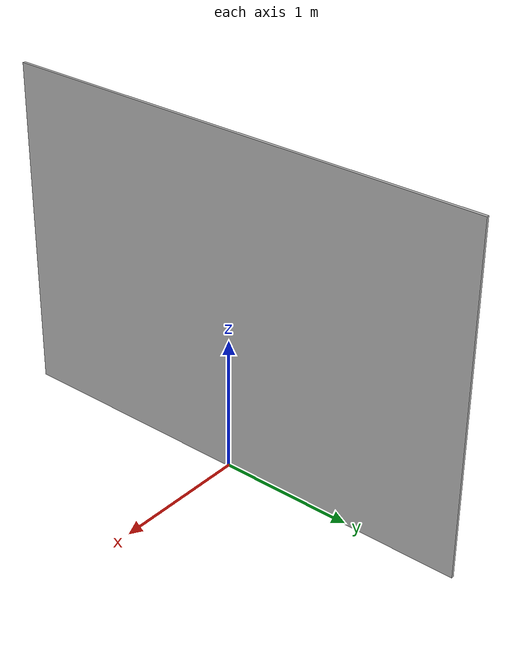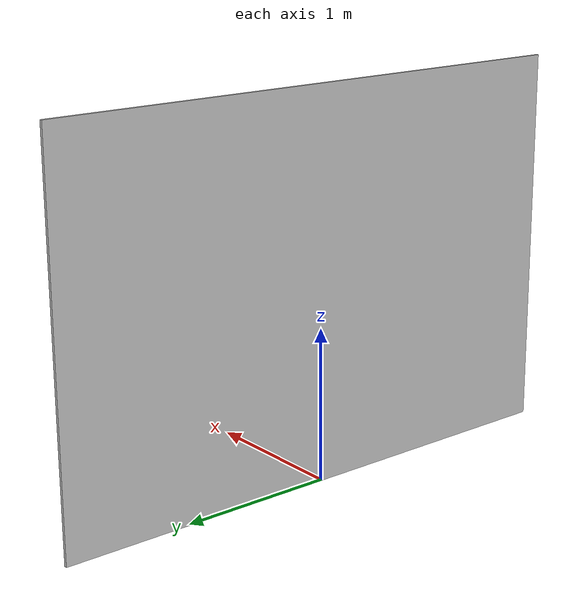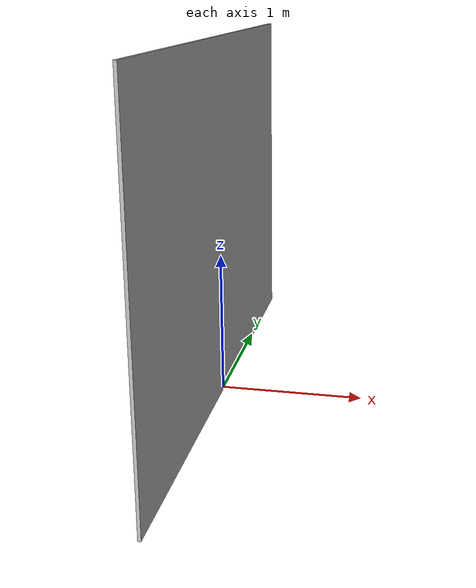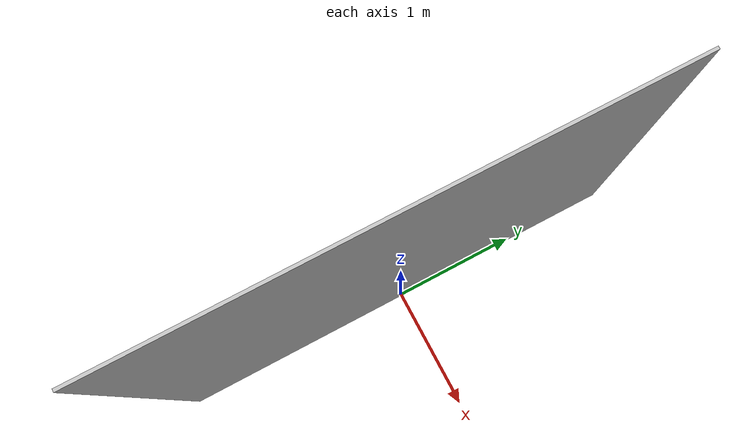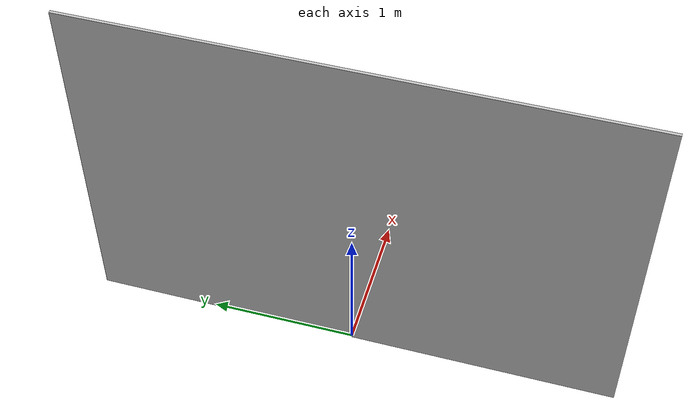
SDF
<?xml version='1.0'?>
<sdf version="1.4">
<model name="MiniMarsWallNorth">
  <pose>0 0 1.25 0 0 0</pose>
  <static>true</static>
    <link name="link">
      <collision name="collision">
        <geometry>
          <box>
            <size>0.02 3.66 2.5</size>
          </box>
        </geometry>
      </collision>
      <visual name="visual">
        <geometry>
          <box>
            <size>0.02 3.66 2.5</size>
          </box>
        </geometry>
		       <material>
			<script>
        <uri>model://MiniMarsWallEast/materials/scripts</uri>
        <uri>model://MiniMarsWallEast/materials/textures</uri>
        <name>MiniMarsWall/Image</name>
      </script>
        	</material>
      </visual>
    </link>
  </model>
</sdf>
